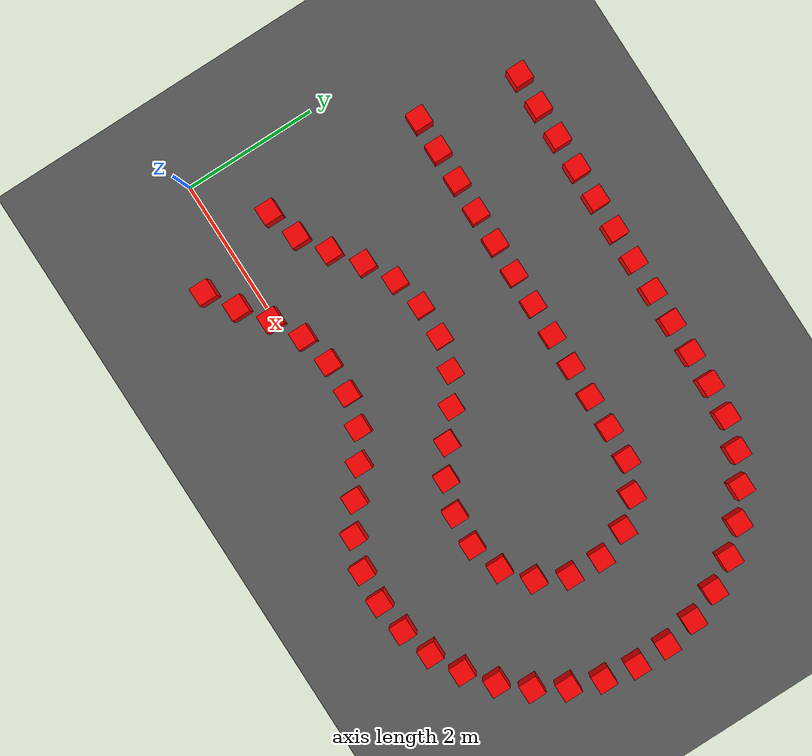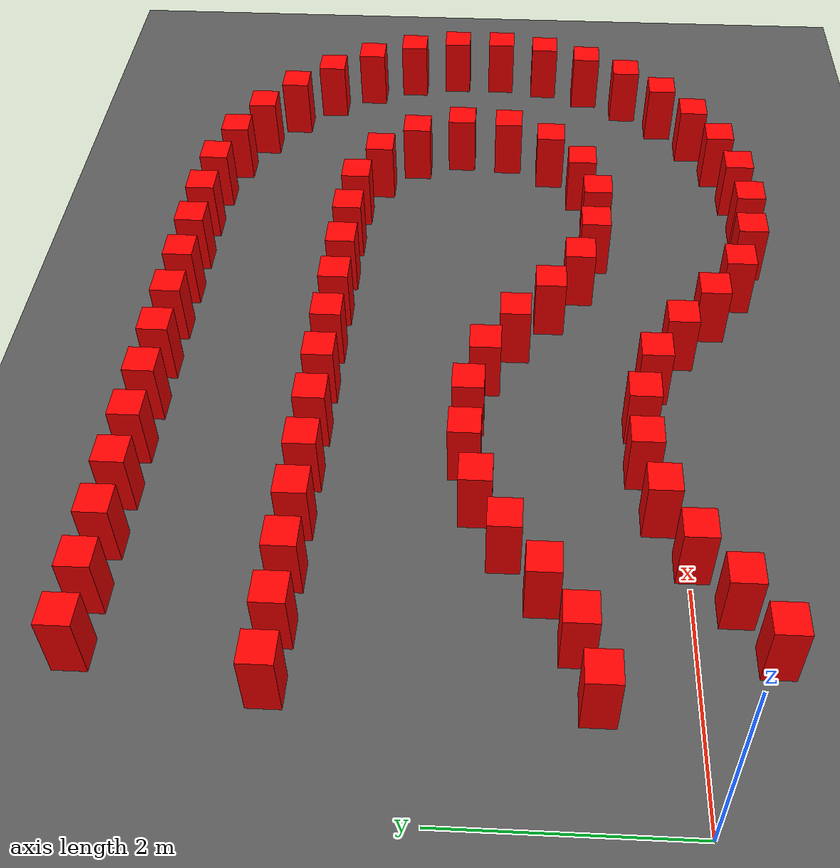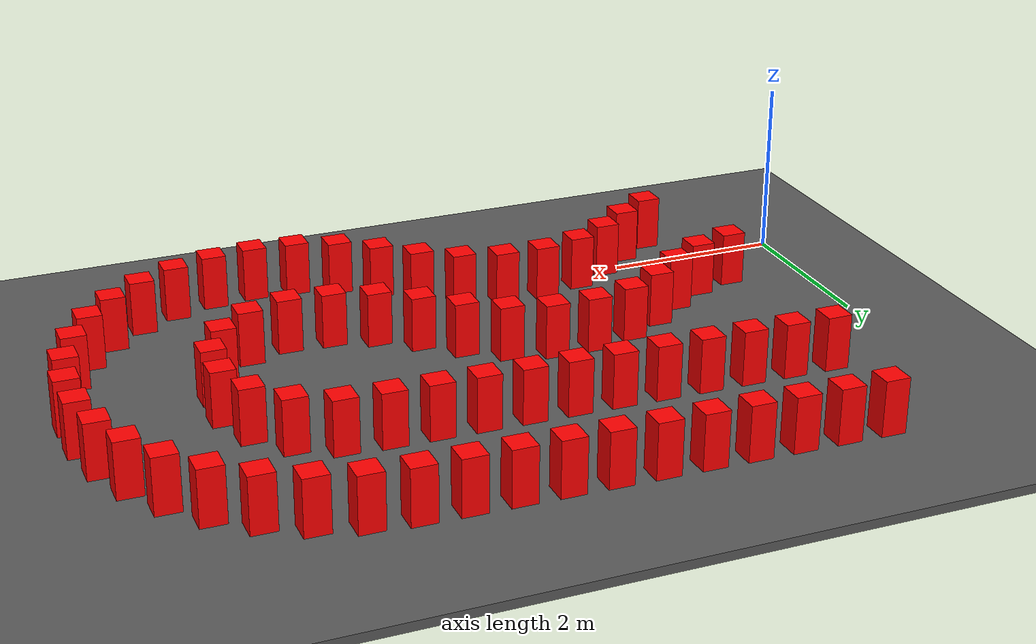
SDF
<sdf version="1.6">
 <world name="prototype">
  <model name="ground">
   <static>true</static>
   <pose>0 0 -0.05 0 0 0</pose>
   <link name="body">
    <visual name="visual">
     <geometry><box><size>200 200 0.1</size></box></geometry>
     <material><ambient>.35 .35 .35 1</ambient><diffuse>.35 .35 .35 1</diffuse></material>
    </visual>
    <collision name="collision"><geometry><box><size>200 200 0.1</size></box></geometry></collision>
   </link>
  </model>
  <model name="cone_proxy_c13">
   <static>true</static>
   <pose>1.3812 -0.5945 0.315 0 0 0</pose>
   <link name="body">
    <visual name="visual">
     <geometry><box><size>.28 .28 .63</size></box></geometry>
     <material><ambient>1 0 0 1</ambient><diffuse>1 0 0 1</diffuse></material>
    </visual>
    <collision name="collision"><geometry><box><size>.28 .28 .63</size></box></geometry></collision>
   </link>
  </model>
  <model name="cone_proxy_c14">
   <static>true</static>
   <pose>1.8046 -0.3255 0.315 0 0 0</pose>
   <link name="body">
    <visual name="visual">
     <geometry><box><size>.28 .28 .63</size></box></geometry>
     <material><ambient>1 0 0 1</ambient><diffuse>1 0 0 1</diffuse></material>
    </visual>
    <collision name="collision"><geometry><box><size>.28 .28 .63</size></box></geometry></collision>
   </link>
  </model>
  <model name="cone_proxy_c15">
   <static>true</static>
   <pose>2.2028 -0.0191 0.315 0 0 0</pose>
   <link name="body">
    <visual name="visual">
     <geometry><box><size>.28 .28 .63</size></box></geometry>
     <material><ambient>1 0 0 1</ambient><diffuse>1 0 0 1</diffuse></material>
    </visual>
    <collision name="collision"><geometry><box><size>.28 .28 .63</size></box></geometry></collision>
   </link>
  </model>
  <model name="cone_proxy_c16">
   <static>true</static>
   <pose>2.6411 0.2241 0.315 0 0 0</pose>
   <link name="body">
    <visual name="visual">
     <geometry><box><size>.28 .28 .63</size></box></geometry>
     <material><ambient>1 0 0 1</ambient><diffuse>1 0 0 1</diffuse></material>
    </visual>
    <collision name="collision"><geometry><box><size>.28 .28 .63</size></box></geometry></collision>
   </link>
  </model>
  <model name="cone_proxy_c17">
   <static>true</static>
   <pose>3.1296 0.3343 0.315 0 0 0</pose>
   <link name="body">
    <visual name="visual">
     <geometry><box><size>.28 .28 .63</size></box></geometry>
     <material><ambient>1 0 0 1</ambient><diffuse>1 0 0 1</diffuse></material>
    </visual>
    <collision name="collision"><geometry><box><size>.28 .28 .63</size></box></geometry></collision>
   </link>
  </model>
  <model name="cone_proxy_c18">
   <static>true</static>
   <pose>3.6307 0.3239 0.315 0 0 0</pose>
   <link name="body">
    <visual name="visual">
     <geometry><box><size>.28 .28 .63</size></box></geometry>
     <material><ambient>1 0 0 1</ambient><diffuse>1 0 0 1</diffuse></material>
    </visual>
    <collision name="collision"><geometry><box><size>.28 .28 .63</size></box></geometry></collision>
   </link>
  </model>
  <model name="cone_proxy_c19">
   <static>true</static>
   <pose>4.1138 0.1925 0.315 0 0 0</pose>
   <link name="body">
    <visual name="visual">
     <geometry><box><size>.28 .28 .63</size></box></geometry>
     <material><ambient>1 0 0 1</ambient><diffuse>1 0 0 1</diffuse></material>
    </visual>
    <collision name="collision"><geometry><box><size>.28 .28 .63</size></box></geometry></collision>
   </link>
  </model>
  <model name="cone_proxy_c20">
   <static>true</static>
   <pose>4.5416 -0.0688 0.315 0 0 0</pose>
   <link name="body">
    <visual name="visual">
     <geometry><box><size>.28 .28 .63</size></box></geometry>
     <material><ambient>1 0 0 1</ambient><diffuse>1 0 0 1</diffuse></material>
    </visual>
    <collision name="collision"><geometry><box><size>.28 .28 .63</size></box></geometry></collision>
   </link>
  </model>
  <model name="cone_proxy_c21">
   <static>true</static>
   <pose>4.9283 -0.3896 0.315 0 0 0</pose>
   <link name="body">
    <visual name="visual">
     <geometry><box><size>.28 .28 .63</size></box></geometry>
     <material><ambient>1 0 0 1</ambient><diffuse>1 0 0 1</diffuse></material>
    </visual>
    <collision name="collision"><geometry><box><size>.28 .28 .63</size></box></geometry></collision>
   </link>
  </model>
  <model name="cone_proxy_c22">
   <static>true</static>
   <pose>5.3429 -0.6718 0.315 0 0 0</pose>
   <link name="body">
    <visual name="visual">
     <geometry><box><size>.28 .28 .63</size></box></geometry>
     <material><ambient>1 0 0 1</ambient><diffuse>1 0 0 1</diffuse></material>
    </visual>
    <collision name="collision"><geometry><box><size>.28 .28 .63</size></box></geometry></collision>
   </link>
  </model>
  <model name="cone_proxy_c23">
   <static>true</static>
   <pose>5.8171 -0.8327 0.315 0 0 0</pose>
   <link name="body">
    <visual name="visual">
     <geometry><box><size>.28 .28 .63</size></box></geometry>
     <material><ambient>1 0 0 1</ambient><diffuse>1 0 0 1</diffuse></material>
    </visual>
    <collision name="collision"><geometry><box><size>.28 .28 .63</size></box></geometry></collision>
   </link>
  </model>
  <model name="cone_proxy_c24">
   <static>true</static>
   <pose>6.3173 -0.8668 0.315 0 0 0</pose>
   <link name="body">
    <visual name="visual">
     <geometry><box><size>.28 .28 .63</size></box></geometry>
     <material><ambient>1 0 0 1</ambient><diffuse>1 0 0 1</diffuse></material>
    </visual>
    <collision name="collision"><geometry><box><size>.28 .28 .63</size></box></geometry></collision>
   </link>
  </model>
  <model name="cone_proxy_c25">
   <static>true</static>
   <pose>6.8151 -0.8049 0.315 0 0 0</pose>
   <link name="body">
    <visual name="visual">
     <geometry><box><size>.28 .28 .63</size></box></geometry>
     <material><ambient>1 0 0 1</ambient><diffuse>1 0 0 1</diffuse></material>
    </visual>
    <collision name="collision"><geometry><box><size>.28 .28 .63</size></box></geometry></collision>
   </link>
  </model>
  <model name="cone_proxy_c26">
   <static>true</static>
   <pose>7.2939 -0.6547 0.315 0 0 0</pose>
   <link name="body">
    <visual name="visual">
     <geometry><box><size>.28 .28 .63</size></box></geometry>
     <material><ambient>1 0 0 1</ambient><diffuse>1 0 0 1</diffuse></material>
    </visual>
    <collision name="collision"><geometry><box><size>.28 .28 .63</size></box></geometry></collision>
   </link>
  </model>
  <model name="cone_proxy_c27">
   <static>true</static>
   <pose>7.7362 -0.4177 0.315 0 0 0</pose>
   <link name="body">
    <visual name="visual">
     <geometry><box><size>.28 .28 .63</size></box></geometry>
     <material><ambient>1 0 0 1</ambient><diffuse>1 0 0 1</diffuse></material>
    </visual>
    <collision name="collision"><geometry><box><size>.28 .28 .63</size></box></geometry></collision>
   </link>
  </model>
  <model name="cone_proxy_c28">
   <static>true</static>
   <pose>8.1291 -0.1058 0.315 0 0 0</pose>
   <link name="body">
    <visual name="visual">
     <geometry><box><size>.28 .28 .63</size></box></geometry>
     <material><ambient>1 0 0 1</ambient><diffuse>1 0 0 1</diffuse></material>
    </visual>
    <collision name="collision"><geometry><box><size>.28 .28 .63</size></box></geometry></collision>
   </link>
  </model>
  <model name="cone_proxy_c29">
   <static>true</static>
   <pose>8.4584 0.2728 0.315 0 0 0</pose>
   <link name="body">
    <visual name="visual">
     <geometry><box><size>.28 .28 .63</size></box></geometry>
     <material><ambient>1 0 0 1</ambient><diffuse>1 0 0 1</diffuse></material>
    </visual>
    <collision name="collision"><geometry><box><size>.28 .28 .63</size></box></geometry></collision>
   </link>
  </model>
  <model name="cone_proxy_c30">
   <static>true</static>
   <pose>8.7127 0.7053 0.315 0 0 0</pose>
   <link name="body">
    <visual name="visual">
     <geometry><box><size>.28 .28 .63</size></box></geometry>
     <material><ambient>1 0 0 1</ambient><diffuse>1 0 0 1</diffuse></material>
    </visual>
    <collision name="collision"><geometry><box><size>.28 .28 .63</size></box></geometry></collision>
   </link>
  </model>
  <model name="cone_proxy_c31">
   <static>true</static>
   <pose>8.8859 1.1762 0.315 0 0 0</pose>
   <link name="body">
    <visual name="visual">
     <geometry><box><size>.28 .28 .63</size></box></geometry>
     <material><ambient>1 0 0 1</ambient><diffuse>1 0 0 1</diffuse></material>
    </visual>
    <collision name="collision"><geometry><box><size>.28 .28 .63</size></box></geometry></collision>
   </link>
  </model>
  <model name="cone_proxy_c32">
   <static>true</static>
   <pose>8.9683 1.6712 0.315 0 0 0</pose>
   <link name="body">
    <visual name="visual">
     <geometry><box><size>.28 .28 .63</size></box></geometry>
     <material><ambient>1 0 0 1</ambient><diffuse>1 0 0 1</diffuse></material>
    </visual>
    <collision name="collision"><geometry><box><size>.28 .28 .63</size></box></geometry></collision>
   </link>
  </model>
  <model name="cone_proxy_c33">
   <static>true</static>
   <pose>8.9604 2.1728 0.315 0 0 0</pose>
   <link name="body">
    <visual name="visual">
     <geometry><box><size>.28 .28 .63</size></box></geometry>
     <material><ambient>1 0 0 1</ambient><diffuse>1 0 0 1</diffuse></material>
    </visual>
    <collision name="collision"><geometry><box><size>.28 .28 .63</size></box></geometry></collision>
   </link>
  </model>
  <model name="cone_proxy_c34">
   <static>true</static>
   <pose>8.8622 2.6648 0.315 0 0 0</pose>
   <link name="body">
    <visual name="visual">
     <geometry><box><size>.28 .28 .63</size></box></geometry>
     <material><ambient>1 0 0 1</ambient><diffuse>1 0 0 1</diffuse></material>
    </visual>
    <collision name="collision"><geometry><box><size>.28 .28 .63</size></box></geometry></collision>
   </link>
  </model>
  <model name="cone_proxy_c35">
   <static>true</static>
   <pose>8.6742 3.1300 0.315 0 0 0</pose>
   <link name="body">
    <visual name="visual">
     <geometry><box><size>.28 .28 .63</size></box></geometry>
     <material><ambient>1 0 0 1</ambient><diffuse>1 0 0 1</diffuse></material>
    </visual>
    <collision name="collision"><geometry><box><size>.28 .28 .63</size></box></geometry></collision>
   </link>
  </model>
  <model name="cone_proxy_c36">
   <static>true</static>
   <pose>8.4065 3.5543 0.315 0 0 0</pose>
   <link name="body">
    <visual name="visual">
     <geometry><box><size>.28 .28 .63</size></box></geometry>
     <material><ambient>1 0 0 1</ambient><diffuse>1 0 0 1</diffuse></material>
    </visual>
    <collision name="collision"><geometry><box><size>.28 .28 .63</size></box></geometry></collision>
   </link>
  </model>
  <model name="cone_proxy_c37">
   <static>true</static>
   <pose>8.0653 3.9222 0.315 0 0 0</pose>
   <link name="body">
    <visual name="visual">
     <geometry><box><size>.28 .28 .63</size></box></geometry>
     <material><ambient>1 0 0 1</ambient><diffuse>1 0 0 1</diffuse></material>
    </visual>
    <collision name="collision"><geometry><box><size>.28 .28 .63</size></box></geometry></collision>
   </link>
  </model>
  <model name="cone_proxy_c38">
   <static>true</static>
   <pose>7.6627 4.2216 0.315 0 0 0</pose>
   <link name="body">
    <visual name="visual">
     <geometry><box><size>.28 .28 .63</size></box></geometry>
     <material><ambient>1 0 0 1</ambient><diffuse>1 0 0 1</diffuse></material>
    </visual>
    <collision name="collision"><geometry><box><size>.28 .28 .63</size></box></geometry></collision>
   </link>
  </model>
  <model name="cone_proxy_c39">
   <static>true</static>
   <pose>7.2133 4.4446 0.315 0 0 0</pose>
   <link name="body">
    <visual name="visual">
     <geometry><box><size>.28 .28 .63</size></box></geometry>
     <material><ambient>1 0 0 1</ambient><diffuse>1 0 0 1</diffuse></material>
    </visual>
    <collision name="collision"><geometry><box><size>.28 .28 .63</size></box></geometry></collision>
   </link>
  </model>
  <model name="cone_proxy_c40">
   <static>true</static>
   <pose>6.7298 4.5793 0.315 0 0 0</pose>
   <link name="body">
    <visual name="visual">
     <geometry><box><size>.28 .28 .63</size></box></geometry>
     <material><ambient>1 0 0 1</ambient><diffuse>1 0 0 1</diffuse></material>
    </visual>
    <collision name="collision"><geometry><box><size>.28 .28 .63</size></box></geometry></collision>
   </link>
  </model>
  <model name="cone_proxy_c41">
   <static>true</static>
   <pose>6.2303 4.6273 0.315 0 0 0</pose>
   <link name="body">
    <visual name="visual">
     <geometry><box><size>.28 .28 .63</size></box></geometry>
     <material><ambient>1 0 0 1</ambient><diffuse>1 0 0 1</diffuse></material>
    </visual>
    <collision name="collision"><geometry><box><size>.28 .28 .63</size></box></geometry></collision>
   </link>
  </model>
  <model name="cone_proxy_c42">
   <static>true</static>
   <pose>5.7279 4.6364 0.315 0 0 0</pose>
   <link name="body">
    <visual name="visual">
     <geometry><box><size>.28 .28 .63</size></box></geometry>
     <material><ambient>1 0 0 1</ambient><diffuse>1 0 0 1</diffuse></material>
    </visual>
    <collision name="collision"><geometry><box><size>.28 .28 .63</size></box></geometry></collision>
   </link>
  </model>
  <model name="cone_proxy_c43">
   <static>true</static>
   <pose>5.2255 4.6454 0.315 0 0 0</pose>
   <link name="body">
    <visual name="visual">
     <geometry><box><size>.28 .28 .63</size></box></geometry>
     <material><ambient>1 0 0 1</ambient><diffuse>1 0 0 1</diffuse></material>
    </visual>
    <collision name="collision"><geometry><box><size>.28 .28 .63</size></box></geometry></collision>
   </link>
  </model>
  <model name="cone_proxy_c44">
   <static>true</static>
   <pose>4.7230 4.6545 0.315 0 0 0</pose>
   <link name="body">
    <visual name="visual">
     <geometry><box><size>.28 .28 .63</size></box></geometry>
     <material><ambient>1 0 0 1</ambient><diffuse>1 0 0 1</diffuse></material>
    </visual>
    <collision name="collision"><geometry><box><size>.28 .28 .63</size></box></geometry></collision>
   </link>
  </model>
  <model name="cone_proxy_c45">
   <static>true</static>
   <pose>4.2206 4.6636 0.315 0 0 0</pose>
   <link name="body">
    <visual name="visual">
     <geometry><box><size>.28 .28 .63</size></box></geometry>
     <material><ambient>1 0 0 1</ambient><diffuse>1 0 0 1</diffuse></material>
    </visual>
    <collision name="collision"><geometry><box><size>.28 .28 .63</size></box></geometry></collision>
   </link>
  </model>
  <model name="cone_proxy_c46">
   <static>true</static>
   <pose>3.7181 4.6727 0.315 0 0 0</pose>
   <link name="body">
    <visual name="visual">
     <geometry><box><size>.28 .28 .63</size></box></geometry>
     <material><ambient>1 0 0 1</ambient><diffuse>1 0 0 1</diffuse></material>
    </visual>
    <collision name="collision"><geometry><box><size>.28 .28 .63</size></box></geometry></collision>
   </link>
  </model>
  <model name="cone_proxy_c47">
   <static>true</static>
   <pose>3.2156 4.6818 0.315 0 0 0</pose>
   <link name="body">
    <visual name="visual">
     <geometry><box><size>.28 .28 .63</size></box></geometry>
     <material><ambient>1 0 0 1</ambient><diffuse>1 0 0 1</diffuse></material>
    </visual>
    <collision name="collision"><geometry><box><size>.28 .28 .63</size></box></geometry></collision>
   </link>
  </model>
  <model name="cone_proxy_c48">
   <static>true</static>
   <pose>2.7132 4.6909 0.315 0 0 0</pose>
   <link name="body">
    <visual name="visual">
     <geometry><box><size>.28 .28 .63</size></box></geometry>
     <material><ambient>1 0 0 1</ambient><diffuse>1 0 0 1</diffuse></material>
    </visual>
    <collision name="collision"><geometry><box><size>.28 .28 .63</size></box></geometry></collision>
   </link>
  </model>
  <model name="cone_proxy_c49">
   <static>true</static>
   <pose>2.2108 4.7000 0.315 0 0 0</pose>
   <link name="body">
    <visual name="visual">
     <geometry><box><size>.28 .28 .63</size></box></geometry>
     <material><ambient>1 0 0 1</ambient><diffuse>1 0 0 1</diffuse></material>
    </visual>
    <collision name="collision"><geometry><box><size>.28 .28 .63</size></box></geometry></collision>
   </link>
  </model>
  <model name="cone_proxy_c50">
   <static>true</static>
   <pose>1.7084 4.7091 0.315 0 0 0</pose>
   <link name="body">
    <visual name="visual">
     <geometry><box><size>.28 .28 .63</size></box></geometry>
     <material><ambient>1 0 0 1</ambient><diffuse>1 0 0 1</diffuse></material>
    </visual>
    <collision name="collision"><geometry><box><size>.28 .28 .63</size></box></geometry></collision>
   </link>
  </model>
  <model name="cone_proxy_c51">
   <static>true</static>
   <pose>1.2058 4.7182 0.315 0 0 0</pose>
   <link name="body">
    <visual name="visual">
     <geometry><box><size>.28 .28 .63</size></box></geometry>
     <material><ambient>1 0 0 1</ambient><diffuse>1 0 0 1</diffuse></material>
    </visual>
    <collision name="collision"><geometry><box><size>.28 .28 .63</size></box></geometry></collision>
   </link>
  </model>
  <model name="cone_proxy_c82">
   <static>true</static>
   <pose>0.9299 0.7659 0.315 0 0 0</pose>
   <link name="body">
    <visual name="visual">
     <geometry><box><size>.28 .28 .63</size></box></geometry>
     <material><ambient>1 0 0 1</ambient><diffuse>1 0 0 1</diffuse></material>
    </visual>
    <collision name="collision"><geometry><box><size>.28 .28 .63</size></box></geometry></collision>
   </link>
  </model>
  <model name="cone_proxy_c83">
   <static>true</static>
   <pose>1.4084 0.9129 0.315 0 0 0</pose>
   <link name="body">
    <visual name="visual">
     <geometry><box><size>.28 .28 .63</size></box></geometry>
     <material><ambient>1 0 0 1</ambient><diffuse>1 0 0 1</diffuse></material>
    </visual>
    <collision name="collision"><geometry><box><size>.28 .28 .63</size></box></geometry></collision>
   </link>
  </model>
  <model name="cone_proxy_c84">
   <static>true</static>
   <pose>1.8319 1.1819 0.315 0 0 0</pose>
   <link name="body">
    <visual name="visual">
     <geometry><box><size>.28 .28 .63</size></box></geometry>
     <material><ambient>1 0 0 1</ambient><diffuse>1 0 0 1</diffuse></material>
    </visual>
    <collision name="collision"><geometry><box><size>.28 .28 .63</size></box></geometry></collision>
   </link>
  </model>
  <model name="cone_proxy_c85">
   <static>true</static>
   <pose>2.2301 1.4882 0.315 0 0 0</pose>
   <link name="body">
    <visual name="visual">
     <geometry><box><size>.28 .28 .63</size></box></geometry>
     <material><ambient>1 0 0 1</ambient><diffuse>1 0 0 1</diffuse></material>
    </visual>
    <collision name="collision"><geometry><box><size>.28 .28 .63</size></box></geometry></collision>
   </link>
  </model>
  <model name="cone_proxy_c86">
   <static>true</static>
   <pose>2.6684 1.7314 0.315 0 0 0</pose>
   <link name="body">
    <visual name="visual">
     <geometry><box><size>.28 .28 .63</size></box></geometry>
     <material><ambient>1 0 0 1</ambient><diffuse>1 0 0 1</diffuse></material>
    </visual>
    <collision name="collision"><geometry><box><size>.28 .28 .63</size></box></geometry></collision>
   </link>
  </model>
  <model name="cone_proxy_c87">
   <static>true</static>
   <pose>3.1568 1.8416 0.315 0 0 0</pose>
   <link name="body">
    <visual name="visual">
     <geometry><box><size>.28 .28 .63</size></box></geometry>
     <material><ambient>1 0 0 1</ambient><diffuse>1 0 0 1</diffuse></material>
    </visual>
    <collision name="collision"><geometry><box><size>.28 .28 .63</size></box></geometry></collision>
   </link>
  </model>
  <model name="cone_proxy_c88">
   <static>true</static>
   <pose>3.6580 1.8312 0.315 0 0 0</pose>
   <link name="body">
    <visual name="visual">
     <geometry><box><size>.28 .28 .63</size></box></geometry>
     <material><ambient>1 0 0 1</ambient><diffuse>1 0 0 1</diffuse></material>
    </visual>
    <collision name="collision"><geometry><box><size>.28 .28 .63</size></box></geometry></collision>
   </link>
  </model>
  <model name="cone_proxy_c89">
   <static>true</static>
   <pose>4.1411 1.6999 0.315 0 0 0</pose>
   <link name="body">
    <visual name="visual">
     <geometry><box><size>.28 .28 .63</size></box></geometry>
     <material><ambient>1 0 0 1</ambient><diffuse>1 0 0 1</diffuse></material>
    </visual>
    <collision name="collision"><geometry><box><size>.28 .28 .63</size></box></geometry></collision>
   </link>
  </model>
  <model name="cone_proxy_c90">
   <static>true</static>
   <pose>4.5689 1.4386 0.315 0 0 0</pose>
   <link name="body">
    <visual name="visual">
     <geometry><box><size>.28 .28 .63</size></box></geometry>
     <material><ambient>1 0 0 1</ambient><diffuse>1 0 0 1</diffuse></material>
    </visual>
    <collision name="collision"><geometry><box><size>.28 .28 .63</size></box></geometry></collision>
   </link>
  </model>
  <model name="cone_proxy_c91">
   <static>true</static>
   <pose>4.9556 1.1178 0.315 0 0 0</pose>
   <link name="body">
    <visual name="visual">
     <geometry><box><size>.28 .28 .63</size></box></geometry>
     <material><ambient>1 0 0 1</ambient><diffuse>1 0 0 1</diffuse></material>
    </visual>
    <collision name="collision"><geometry><box><size>.28 .28 .63</size></box></geometry></collision>
   </link>
  </model>
  <model name="cone_proxy_c92">
   <static>true</static>
   <pose>5.3702 0.8355 0.315 0 0 0</pose>
   <link name="body">
    <visual name="visual">
     <geometry><box><size>.28 .28 .63</size></box></geometry>
     <material><ambient>1 0 0 1</ambient><diffuse>1 0 0 1</diffuse></material>
    </visual>
    <collision name="collision"><geometry><box><size>.28 .28 .63</size></box></geometry></collision>
   </link>
  </model>
  <model name="cone_proxy_c93">
   <static>true</static>
   <pose>5.8444 0.6747 0.315 0 0 0</pose>
   <link name="body">
    <visual name="visual">
     <geometry><box><size>.28 .28 .63</size></box></geometry>
     <material><ambient>1 0 0 1</ambient><diffuse>1 0 0 1</diffuse></material>
    </visual>
    <collision name="collision"><geometry><box><size>.28 .28 .63</size></box></geometry></collision>
   </link>
  </model>
  <model name="cone_proxy_c94">
   <static>true</static>
   <pose>6.3445 0.6441 0.315 0 0 0</pose>
   <link name="body">
    <visual name="visual">
     <geometry><box><size>.28 .28 .63</size></box></geometry>
     <material><ambient>1 0 0 1</ambient><diffuse>1 0 0 1</diffuse></material>
    </visual>
    <collision name="collision"><geometry><box><size>.28 .28 .63</size></box></geometry></collision>
   </link>
  </model>
  <model name="cone_proxy_c95">
   <static>true</static>
   <pose>6.8217 0.7894 0.315 0 0 0</pose>
   <link name="body">
    <visual name="visual">
     <geometry><box><size>.28 .28 .63</size></box></geometry>
     <material><ambient>1 0 0 1</ambient><diffuse>1 0 0 1</diffuse></material>
    </visual>
    <collision name="collision"><geometry><box><size>.28 .28 .63</size></box></geometry></collision>
   </link>
  </model>
  <model name="cone_proxy_c96">
   <static>true</static>
   <pose>7.2033 1.1109 0.315 0 0 0</pose>
   <link name="body">
    <visual name="visual">
     <geometry><box><size>.28 .28 .63</size></box></geometry>
     <material><ambient>1 0 0 1</ambient><diffuse>1 0 0 1</diffuse></material>
    </visual>
    <collision name="collision"><geometry><box><size>.28 .28 .63</size></box></geometry></collision>
   </link>
  </model>
  <model name="cone_proxy_c97">
   <static>true</static>
   <pose>7.4275 1.5568 0.315 0 0 0</pose>
   <link name="body">
    <visual name="visual">
     <geometry><box><size>.28 .28 .63</size></box></geometry>
     <material><ambient>1 0 0 1</ambient><diffuse>1 0 0 1</diffuse></material>
    </visual>
    <collision name="collision"><geometry><box><size>.28 .28 .63</size></box></geometry></collision>
   </link>
  </model>
  <model name="cone_proxy_c98">
   <static>true</static>
   <pose>7.4569 2.0551 0.315 0 0 0</pose>
   <link name="body">
    <visual name="visual">
     <geometry><box><size>.28 .28 .63</size></box></geometry>
     <material><ambient>1 0 0 1</ambient><diffuse>1 0 0 1</diffuse></material>
    </visual>
    <collision name="collision"><geometry><box><size>.28 .28 .63</size></box></geometry></collision>
   </link>
  </model>
  <model name="cone_proxy_c99">
   <static>true</static>
   <pose>7.2878 2.5245 0.315 0 0 0</pose>
   <link name="body">
    <visual name="visual">
     <geometry><box><size>.28 .28 .63</size></box></geometry>
     <material><ambient>1 0 0 1</ambient><diffuse>1 0 0 1</diffuse></material>
    </visual>
    <collision name="collision"><geometry><box><size>.28 .28 .63</size></box></geometry></collision>
   </link>
  </model>
  <model name="cone_proxy_c100">
   <static>true</static>
   <pose>6.9475 2.8894 0.315 0 0 0</pose>
   <link name="body">
    <visual name="visual">
     <geometry><box><size>.28 .28 .63</size></box></geometry>
     <material><ambient>1 0 0 1</ambient><diffuse>1 0 0 1</diffuse></material>
    </visual>
    <collision name="collision"><geometry><box><size>.28 .28 .63</size></box></geometry></collision>
   </link>
  </model>
  <model name="cone_proxy_c101">
   <static>true</static>
   <pose>6.4911 3.0908 0.315 0 0 0</pose>
   <link name="body">
    <visual name="visual">
     <geometry><box><size>.28 .28 .63</size></box></geometry>
     <material><ambient>1 0 0 1</ambient><diffuse>1 0 0 1</diffuse></material>
    </visual>
    <collision name="collision"><geometry><box><size>.28 .28 .63</size></box></geometry></collision>
   </link>
  </model>
  <model name="cone_proxy_c102">
   <static>true</static>
   <pose>5.9906 3.1238 0.315 0 0 0</pose>
   <link name="body">
    <visual name="visual">
     <geometry><box><size>.28 .28 .63</size></box></geometry>
     <material><ambient>1 0 0 1</ambient><diffuse>1 0 0 1</diffuse></material>
    </visual>
    <collision name="collision"><geometry><box><size>.28 .28 .63</size></box></geometry></collision>
   </link>
  </model>
  <model name="cone_proxy_c103">
   <static>true</static>
   <pose>5.4882 3.1328 0.315 0 0 0</pose>
   <link name="body">
    <visual name="visual">
     <geometry><box><size>.28 .28 .63</size></box></geometry>
     <material><ambient>1 0 0 1</ambient><diffuse>1 0 0 1</diffuse></material>
    </visual>
    <collision name="collision"><geometry><box><size>.28 .28 .63</size></box></geometry></collision>
   </link>
  </model>
  <model name="cone_proxy_c104">
   <static>true</static>
   <pose>4.9857 3.1419 0.315 0 0 0</pose>
   <link name="body">
    <visual name="visual">
     <geometry><box><size>.28 .28 .63</size></box></geometry>
     <material><ambient>1 0 0 1</ambient><diffuse>1 0 0 1</diffuse></material>
    </visual>
    <collision name="collision"><geometry><box><size>.28 .28 .63</size></box></geometry></collision>
   </link>
  </model>
  <model name="cone_proxy_c105">
   <static>true</static>
   <pose>4.4832 3.1510 0.315 0 0 0</pose>
   <link name="body">
    <visual name="visual">
     <geometry><box><size>.28 .28 .63</size></box></geometry>
     <material><ambient>1 0 0 1</ambient><diffuse>1 0 0 1</diffuse></material>
    </visual>
    <collision name="collision"><geometry><box><size>.28 .28 .63</size></box></geometry></collision>
   </link>
  </model>
  <model name="cone_proxy_c106">
   <static>true</static>
   <pose>3.9808 3.1601 0.315 0 0 0</pose>
   <link name="body">
    <visual name="visual">
     <geometry><box><size>.28 .28 .63</size></box></geometry>
     <material><ambient>1 0 0 1</ambient><diffuse>1 0 0 1</diffuse></material>
    </visual>
    <collision name="collision"><geometry><box><size>.28 .28 .63</size></box></geometry></collision>
   </link>
  </model>
  <model name="cone_proxy_c107">
   <static>true</static>
   <pose>3.4784 3.1692 0.315 0 0 0</pose>
   <link name="body">
    <visual name="visual">
     <geometry><box><size>.28 .28 .63</size></box></geometry>
     <material><ambient>1 0 0 1</ambient><diffuse>1 0 0 1</diffuse></material>
    </visual>
    <collision name="collision"><geometry><box><size>.28 .28 .63</size></box></geometry></collision>
   </link>
  </model>
  <model name="cone_proxy_c108">
   <static>true</static>
   <pose>2.9759 3.1783 0.315 0 0 0</pose>
   <link name="body">
    <visual name="visual">
     <geometry><box><size>.28 .28 .63</size></box></geometry>
     <material><ambient>1 0 0 1</ambient><diffuse>1 0 0 1</diffuse></material>
    </visual>
    <collision name="collision"><geometry><box><size>.28 .28 .63</size></box></geometry></collision>
   </link>
  </model>
  <model name="cone_proxy_c109">
   <static>true</static>
   <pose>2.4735 3.1874 0.315 0 0 0</pose>
   <link name="body">
    <visual name="visual">
     <geometry><box><size>.28 .28 .63</size></box></geometry>
     <material><ambient>1 0 0 1</ambient><diffuse>1 0 0 1</diffuse></material>
    </visual>
    <collision name="collision"><geometry><box><size>.28 .28 .63</size></box></geometry></collision>
   </link>
  </model>
  <model name="cone_proxy_c110">
   <static>true</static>
   <pose>1.9710 3.1965 0.315 0 0 0</pose>
   <link name="body">
    <visual name="visual">
     <geometry><box><size>.28 .28 .63</size></box></geometry>
     <material><ambient>1 0 0 1</ambient><diffuse>1 0 0 1</diffuse></material>
    </visual>
    <collision name="collision"><geometry><box><size>.28 .28 .63</size></box></geometry></collision>
   </link>
  </model>
  <model name="cone_proxy_c111">
   <static>true</static>
   <pose>1.4686 3.2056 0.315 0 0 0</pose>
   <link name="body">
    <visual name="visual">
     <geometry><box><size>.28 .28 .63</size></box></geometry>
     <material><ambient>1 0 0 1</ambient><diffuse>1 0 0 1</diffuse></material>
    </visual>
    <collision name="collision"><geometry><box><size>.28 .28 .63</size></box></geometry></collision>
   </link>
  </model>
  <model name="cone_proxy_c112">
   <static>true</static>
   <pose>0.9661 3.2147 0.315 0 0 0</pose>
   <link name="body">
    <visual name="visual">
     <geometry><box><size>.28 .28 .63</size></box></geometry>
     <material><ambient>1 0 0 1</ambient><diffuse>1 0 0 1</diffuse></material>
    </visual>
    <collision name="collision"><geometry><box><size>.28 .28 .63</size></box></geometry></collision>
   </link>
  </model>
 </world>
</sdf>
